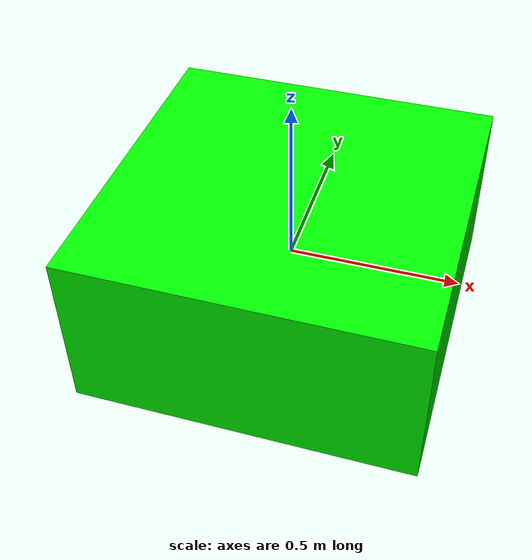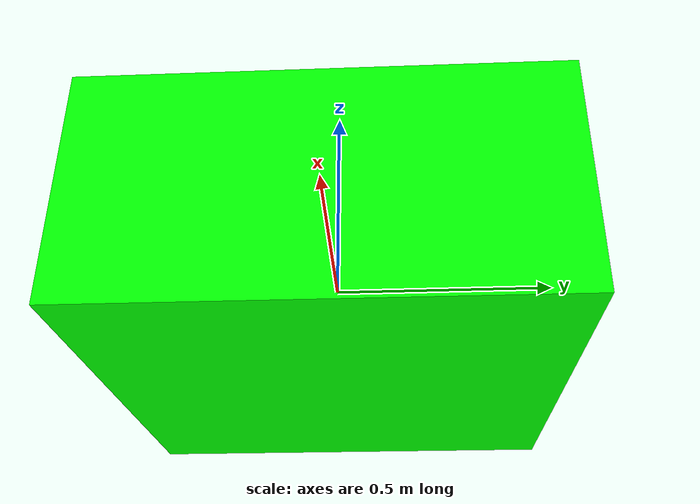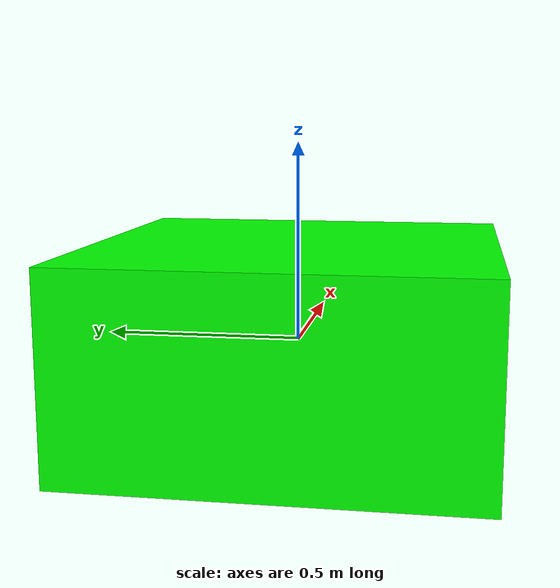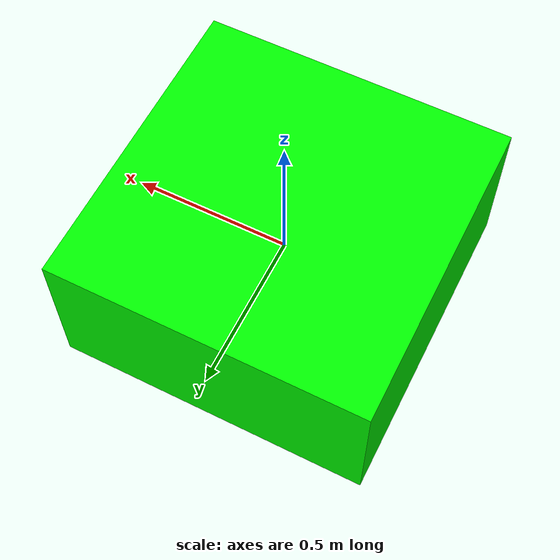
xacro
<?xml version="1.0"?>
<robot name="continuum_robot">
<link name="base_link"/>
<material name="white">
<color rgba="0 1 0 1"/>
</material>

<link name="link0">
<visual>
<geometry>
<box size="1 1 0.5"/>
<origin rpy="0 0 0" xyz="0 0 0"/>
</geometry>
<material name="white"/>
</visual>
</link>

<joint name="joint0" type="floating">
<parent link="base_link"/>
<child link="link0"/>
</joint>

<link name="link1">
<visual>
<geometry>
<cylinder length="0.1" radius="0.3"/>
<origin rpy="0 0 0" xyz="0 0 0"/>
</geometry>
</visual>
</link>

<joint name="joint1" type="floating">
<parent link="base_link"/>
<child link="link1"/>
</joint>

<link name="link2">
<visual>
<geometry>
<cylinder length="0.1" radius="0.3"/>
<origin rpy="0 0 0" xyz="0 0 0"/>
</geometry>
</visual>
</link>

<joint name="joint2" type="floating">
<parent link="base_link"/>
<child link="link2"/>
</joint>

<link name="link3">
<visual>
<geometry>
<cylinder length="0.1" radius="0.3"/>
<origin rpy="0 0 0" xyz="0 0 0"/>
</geometry>
</visual>
</link>

<joint name="joint3" type="floating">
<parent link="base_link"/>
<child link="link3"/>
</joint>

<link name="link4">
<visual>
<geometry>
<cylinder length="0.1" radius="0.3"/>
<origin rpy="0 0 0" xyz="0 0 0"/>
</geometry>
</visual>
</link>

<joint name="joint4" type="floating">
<parent link="base_link"/>
<child link="link4"/>
</joint>

<link name="link5">
<visual>
<geometry>
<cylinder length="0.1" radius="0.3"/>
<origin rpy="0 0 0" xyz="0 0 0"/>
</geometry>
</visual>
</link>

<joint name="joint5" type="floating">
<parent link="base_link"/>
<child link="link5"/>
</joint>

<link name="link6">
<visual>
<geometry>
<cylinder length="0.1" radius="0.3"/>
<origin rpy="0 0 0" xyz="0 0 0"/>
</geometry>
</visual>
</link>

<joint name="joint6" type="floating">
<parent link="base_link"/>
<child link="link6"/>
</joint>

<link name="link7">
<visual>
<geometry>
<cylinder length="0.1" radius="0.3"/>
<origin rpy="0 0 0" xyz="0 0 4"/>
</geometry>
</visual>
</link>

<joint name="joint7" type="floating">
<parent link="base_link"/>
<child link="link7"/>
</joint>

</robot>
